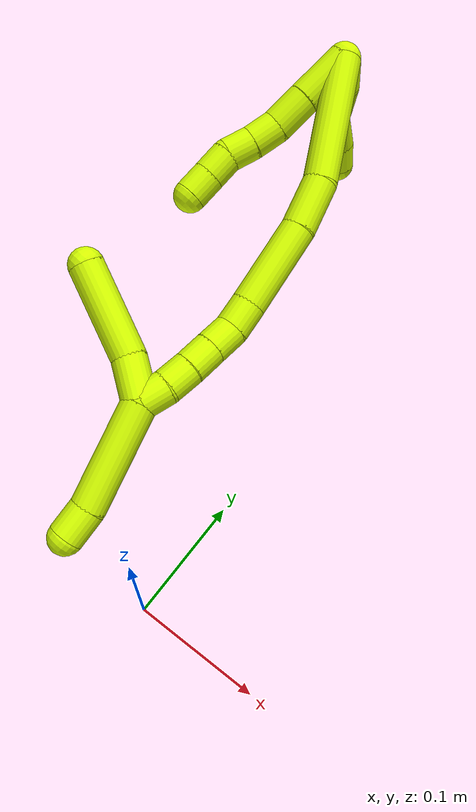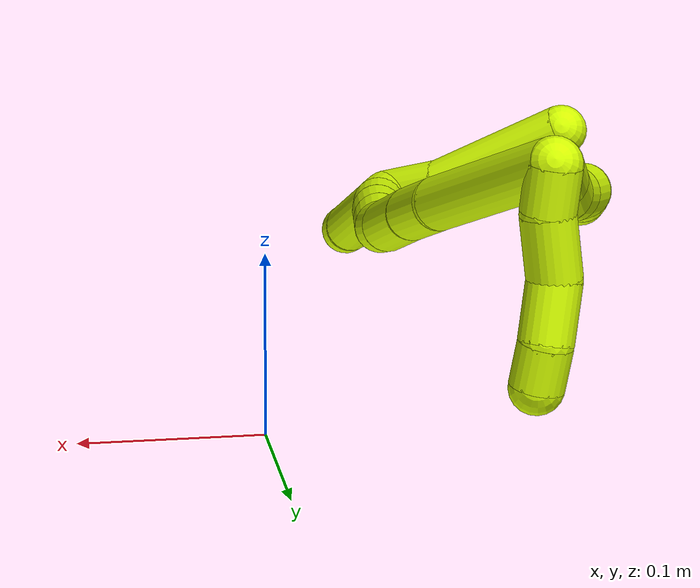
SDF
<sdf version="1.7">
 <world name="default">
  <model name="15">
   <static>0</static>
   <link name="15">
    <collision name="collision-cylinder-e_1_2_8">
     <pose>-0.001703 0.001025 -0.019855 -3.09 -0.085453 2.05566</pose>
     <geometry><cylinder><radius>0.0125</radius><length>0.039909</length></cylinder></geometry>
     <surface>
      <friction><ode><mu>1.16</mu><mu2>1.16</mu2><slip1>0</slip1><slip2>0</slip2></ode></friction>
      <contact><ode><kp>1e+06</kp><kd>1</kd><max_vel>0</max_vel><min_depth>0.001</min_depth></ode></contact>
     </surface>
    </collision>
    <visual name="visual-cylinder-e_1_2_8">
     <pose>-0.001703 0.001025 -0.019855 -3.09 -0.085453 2.05566</pose>
     <geometry><cylinder><radius>0.0125</radius><length>0.039909</length></cylinder></geometry>
     <material><ambient>0.835294 1 0 1</ambient></material>
    </visual>
    <collision name="collision-cylinder-e_2_8_9">
     <pose>-0.004485 0.00334 -0.053664 -3.04944 -0.07686 1.3901</pose>
     <geometry><cylinder><radius>0.0125</radius><length>0.028109</length></cylinder></geometry>
     <surface>
      <friction><ode><mu>1.16</mu><mu2>1.16</mu2><slip1>0</slip1><slip2>0</slip2></ode></friction>
      <contact><ode><kp>1e+06</kp><kd>1</kd><max_vel>0</max_vel><min_depth>0.001</min_depth></ode></contact>
     </surface>
    </collision>
    <visual name="visual-cylinder-e_2_8_9">
     <pose>-0.004485 0.00334 -0.053664 -3.04944 -0.07686 1.3901</pose>
     <geometry><cylinder><radius>0.0125</radius><length>0.028109</length></cylinder></geometry>
     <material><ambient>0.835294 1 0 1</ambient></material>
    </visual>
    <collision name="collision-cylinder-e_3_9_10">
     <pose>-0.008453 0.004518 -0.078092 3.13096 -0.269042 -3.06307</pose>
     <geometry><cylinder><radius>0.0125</radius><length>0.021732</length></cylinder></geometry>
     <surface>
      <friction><ode><mu>1.16</mu><mu2>1.16</mu2><slip1>0</slip1><slip2>0</slip2></ode></friction>
      <contact><ode><kp>1e+06</kp><kd>1</kd><max_vel>0</max_vel><min_depth>0.001</min_depth></ode></contact>
     </surface>
    </collision>
    <visual name="visual-cylinder-e_3_9_10">
     <pose>-0.008453 0.004518 -0.078092 3.13096 -0.269042 -3.06307</pose>
     <geometry><cylinder><radius>0.0125</radius><length>0.021732</length></cylinder></geometry>
     <material><ambient>0.835294 1 0 1</ambient></material>
    </visual>
    <collision name="collision-cylinder-e_4_10_11">
     <pose>-0.01509 0.004258 -0.097939 3.12574 -0.380418 -3.05931</pose>
     <geometry><cylinder><radius>0.0125</radius><length>0.020192</length></cylinder></geometry>
     <surface>
      <friction><ode><mu>1.16</mu><mu2>1.16</mu2><slip1>0</slip1><slip2>0</slip2></ode></friction>
      <contact><ode><kp>1e+06</kp><kd>1</kd><max_vel>0</max_vel><min_depth>0.001</min_depth></ode></contact>
     </surface>
    </collision>
    <visual name="visual-cylinder-e_4_10_11">
     <pose>-0.01509 0.004258 -0.097939 3.12574 -0.380418 -3.05931</pose>
     <geometry><cylinder><radius>0.0125</radius><length>0.020192</length></cylinder></geometry>
     <material><ambient>0.835294 1 0 1</ambient></material>
    </visual>
    <collision name="collision-cylinder-e_5_11_12">
     <pose>-0.019317 0.003508 -0.117299 3.08145 -0.047799 -1.343</pose>
     <geometry><cylinder><radius>0.0125</radius><length>0.020034</length></cylinder></geometry>
     <surface>
      <friction><ode><mu>1.16</mu><mu2>1.16</mu2><slip1>0</slip1><slip2>0</slip2></ode></friction>
      <contact><ode><kp>1e+06</kp><kd>1</kd><max_vel>0</max_vel><min_depth>0.001</min_depth></ode></contact>
     </surface>
    </collision>
    <visual name="visual-cylinder-e_5_11_12">
     <pose>-0.019317 0.003508 -0.117299 3.08145 -0.047799 -1.343</pose>
     <geometry><cylinder><radius>0.0125</radius><length>0.020034</length></cylinder></geometry>
     <material><ambient>0.835294 1 0 1</ambient></material>
    </visual>
    <collision name="collision-cylinder-e_6_12_6">
     <pose>-0.020345 0.002094 -0.137251 3.0602 -0.054912 -1.1867</pose>
     <geometry><cylinder><radius>0.0125</radius><length>0.020025</length></cylinder></geometry>
     <surface>
      <friction><ode><mu>1.16</mu><mu2>1.16</mu2><slip1>0</slip1><slip2>0</slip2></ode></friction>
      <contact><ode><kp>1e+06</kp><kd>1</kd><max_vel>0</max_vel><min_depth>0.001</min_depth></ode></contact>
     </surface>
    </collision>
    <visual name="visual-cylinder-e_6_12_6">
     <pose>-0.020345 0.002094 -0.137251 3.0602 -0.054912 -1.1867</pose>
     <geometry><cylinder><radius>0.0125</radius><length>0.020025</length></cylinder></geometry>
     <material><ambient>0.835294 1 0 1</ambient></material>
    </visual>
    <collision name="collision-cylinder-e_1_2_13">
     <pose>0.007042 0.006797 -0.004845 -2.19003 0.7008 -1.23391</pose>
     <geometry><cylinder><radius>0.0125</radius><length>0.021842</length></cylinder></geometry>
     <surface>
      <friction><ode><mu>1.16</mu><mu2>1.16</mu2><slip1>0</slip1><slip2>0</slip2></ode></friction>
      <contact><ode><kp>1e+06</kp><kd>1</kd><max_vel>0</max_vel><min_depth>0.001</min_depth></ode></contact>
     </surface>
    </collision>
    <visual name="visual-cylinder-e_1_2_13">
     <pose>0.007042 0.006797 -0.004845 -2.19003 0.7008 -1.23391</pose>
     <geometry><cylinder><radius>0.0125</radius><length>0.021842</length></cylinder></geometry>
     <material><ambient>0.835294 1 0 1</ambient></material>
    </visual>
    <collision name="collision-cylinder-e_2_13_14">
     <pose>0.020885 0.024962 -0.016708 -2.1239 0.470887 -0.812259</pose>
     <geometry><cylinder><radius>0.0125</radius><length>0.029982</length></cylinder></geometry>
     <surface>
      <friction><ode><mu>1.16</mu><mu2>1.16</mu2><slip1>0</slip1><slip2>0</slip2></ode></friction>
      <contact><ode><kp>1e+06</kp><kd>1</kd><max_vel>0</max_vel><min_depth>0.001</min_depth></ode></contact>
     </surface>
    </collision>
    <visual name="visual-cylinder-e_2_13_14">
     <pose>0.020885 0.024962 -0.016708 -2.1239 0.470887 -0.812259</pose>
     <geometry><cylinder><radius>0.0125</radius><length>0.029982</length></cylinder></geometry>
     <material><ambient>0.835294 1 0 1</ambient></material>
    </visual>
    <collision name="collision-cylinder-e_3_14_15">
     <pose>0.037411 0.045725 -0.027136 -1.91893 0.77164 -1.05043</pose>
     <geometry><cylinder><radius>0.0125</radius><length>0.027891</length></cylinder></geometry>
     <surface>
      <friction><ode><mu>1.16</mu><mu2>1.16</mu2><slip1>0</slip1><slip2>0</slip2></ode></friction>
      <contact><ode><kp>1e+06</kp><kd>1</kd><max_vel>0</max_vel><min_depth>0.001</min_depth></ode></contact>
     </surface>
    </collision>
    <visual name="visual-cylinder-e_3_14_15">
     <pose>0.037411 0.045725 -0.027136 -1.91893 0.77164 -1.05043</pose>
     <geometry><cylinder><radius>0.0125</radius><length>0.027891</length></cylinder></geometry>
     <material><ambient>0.835294 1 0 1</ambient></material>
    </visual>
    <collision name="collision-cylinder-e_4_15_5">
     <pose>0.054079 0.060921 -0.035131 -2.23986 0.754056 -1.37113</pose>
     <geometry><cylinder><radius>0.0125</radius><length>0.020285</length></cylinder></geometry>
     <surface>
      <friction><ode><mu>1.16</mu><mu2>1.16</mu2><slip1>0</slip1><slip2>0</slip2></ode></friction>
      <contact><ode><kp>1e+06</kp><kd>1</kd><max_vel>0</max_vel><min_depth>0.001</min_depth></ode></contact>
     </surface>
    </collision>
    <visual name="visual-cylinder-e_4_15_5">
     <pose>0.054079 0.060921 -0.035131 -2.23986 0.754056 -1.37113</pose>
     <geometry><cylinder><radius>0.0125</radius><length>0.020285</length></cylinder></geometry>
     <material><ambient>0.835294 1 0 1</ambient></material>
    </visual>
    <collision name="collision-cylinder-e_1_2_16">
     <pose>0.019836 -0.014256 -0.040991 2.80689 0.428716 1.82177</pose>
     <geometry><cylinder><radius>0.0125</radius><length>0.095436</length></cylinder></geometry>
     <surface>
      <friction><ode><mu>1.16</mu><mu2>1.16</mu2><slip1>0</slip1><slip2>0</slip2></ode></friction>
      <contact><ode><kp>1e+06</kp><kd>1</kd><max_vel>0</max_vel><min_depth>0.001</min_depth></ode></contact>
     </surface>
    </collision>
    <visual name="visual-cylinder-e_1_2_16">
     <pose>0.019836 -0.014256 -0.040991 2.80689 0.428716 1.82177</pose>
     <geometry><cylinder><radius>0.0125</radius><length>0.095436</length></cylinder></geometry>
     <material><ambient>0.835294 1 0 1</ambient></material>
    </visual>
    <collision name="collision-cylinder-e_2_16_17">
     <pose>0.043668 -0.032849 -0.10009 2.90651 0.211327 1.46357</pose>
     <geometry><cylinder><radius>0.0125</radius><length>0.038088</length></cylinder></geometry>
     <surface>
      <friction><ode><mu>1.16</mu><mu2>1.16</mu2><slip1>0</slip1><slip2>0</slip2></ode></friction>
      <contact><ode><kp>1e+06</kp><kd>1</kd><max_vel>0</max_vel><min_depth>0.001</min_depth></ode></contact>
     </surface>
    </collision>
    <visual name="visual-cylinder-e_2_16_17">
     <pose>0.043668 -0.032849 -0.10009 2.90651 0.211327 1.46357</pose>
     <geometry><cylinder><radius>0.0125</radius><length>0.038088</length></cylinder></geometry>
     <material><ambient>0.835294 1 0 1</ambient></material>
    </visual>
    <collision name="collision-cylinder-e_3_17_18">
     <pose>0.050397 -0.042787 -0.14963 2.96526 0.085437 0.900817</pose>
     <geometry><cylinder><radius>0.0125</radius><length>0.064088</length></cylinder></geometry>
     <surface>
      <friction><ode><mu>1.16</mu><mu2>1.16</mu2><slip1>0</slip1><slip2>0</slip2></ode></friction>
      <contact><ode><kp>1e+06</kp><kd>1</kd><max_vel>0</max_vel><min_depth>0.001</min_depth></ode></contact>
     </surface>
    </collision>
    <visual name="visual-cylinder-e_3_17_18">
     <pose>0.050397 -0.042787 -0.14963 2.96526 0.085437 0.900817</pose>
     <geometry><cylinder><radius>0.0125</radius><length>0.064088</length></cylinder></geometry>
     <material><ambient>0.835294 1 0 1</ambient></material>
    </visual>
    <collision name="collision-cylinder-e_4_18_19">
     <pose>0.053672 -0.050654 -0.191477 2.92736 0.050726 0.463371</pose>
     <geometry><cylinder><radius>0.0125</radius><length>0.021345</length></cylinder></geometry>
     <surface>
      <friction><ode><mu>1.16</mu><mu2>1.16</mu2><slip1>0</slip1><slip2>0</slip2></ode></friction>
      <contact><ode><kp>1e+06</kp><kd>1</kd><max_vel>0</max_vel><min_depth>0.001</min_depth></ode></contact>
     </surface>
    </collision>
    <visual name="visual-cylinder-e_4_18_19">
     <pose>0.053672 -0.050654 -0.191477 2.92736 0.050726 0.463371</pose>
     <geometry><cylinder><radius>0.0125</radius><length>0.021345</length></cylinder></geometry>
     <material><ambient>0.835294 1 0 1</ambient></material>
    </visual>
    <collision name="collision-cylinder-e_5_19_20">
     <pose>0.052193 -0.056136 -0.21143 2.81636 -0.198096 -1.08918</pose>
     <geometry><cylinder><radius>0.0125</radius><length>0.020532</length></cylinder></geometry>
     <surface>
      <friction><ode><mu>1.16</mu><mu2>1.16</mu2><slip1>0</slip1><slip2>0</slip2></ode></friction>
      <contact><ode><kp>1e+06</kp><kd>1</kd><max_vel>0</max_vel><min_depth>0.001</min_depth></ode></contact>
     </surface>
    </collision>
    <visual name="visual-cylinder-e_5_19_20">
     <pose>0.052193 -0.056136 -0.21143 2.81636 -0.198096 -1.08918</pose>
     <geometry><cylinder><radius>0.0125</radius><length>0.020532</length></cylinder></geometry>
     <material><ambient>0.835294 1 0 1</ambient></material>
    </visual>
    <collision name="collision-cylinder-e_6_20_21">
     <pose>0.048225 -0.062578 -0.230463 2.81405 -0.191832 -1.05446</pose>
     <geometry><cylinder><radius>0.0125</radius><length>0.020433</length></cylinder></geometry>
     <surface>
      <friction><ode><mu>1.16</mu><mu2>1.16</mu2><slip1>0</slip1><slip2>0</slip2></ode></friction>
      <contact><ode><kp>1e+06</kp><kd>1</kd><max_vel>0</max_vel><min_depth>0.001</min_depth></ode></contact>
     </surface>
    </collision>
    <visual name="visual-cylinder-e_6_20_21">
     <pose>0.048225 -0.062578 -0.230463 2.81405 -0.191832 -1.05446</pose>
     <geometry><cylinder><radius>0.0125</radius><length>0.020433</length></cylinder></geometry>
     <material><ambient>0.835294 1 0 1</ambient></material>
    </visual>
    <collision name="collision-cylinder-e_7_21_22">
     <pose>0.043964 -0.068416 -0.249358 2.8706 -0.232838 -1.41802</pose>
     <geometry><cylinder><radius>0.0125</radius><length>0.02005</length></cylinder></geometry>
     <surface>
      <friction><ode><mu>1.16</mu><mu2>1.16</mu2><slip1>0</slip1><slip2>0</slip2></ode></friction>
      <contact><ode><kp>1e+06</kp><kd>1</kd><max_vel>0</max_vel><min_depth>0.001</min_depth></ode></contact>
     </surface>
    </collision>
    <visual name="visual-cylinder-e_7_21_22">
     <pose>0.043964 -0.068416 -0.249358 2.8706 -0.232838 -1.41802</pose>
     <geometry><cylinder><radius>0.0125</radius><length>0.02005</length></cylinder></geometry>
     <material><ambient>0.835294 1 0 1</ambient></material>
    </visual>
    <collision name="collision-cylinder-e_8_22_1">
     <pose>0.037998 -0.072562 -0.267954 2.97625 -0.373373 -2.3148</pose>
     <geometry><cylinder><radius>0.0125</radius><length>0.020029</length></cylinder></geometry>
     <surface>
      <friction><ode><mu>1.16</mu><mu2>1.16</mu2><slip1>0</slip1><slip2>0</slip2></ode></friction>
      <contact><ode><kp>1e+06</kp><kd>1</kd><max_vel>0</max_vel><min_depth>0.001</min_depth></ode></contact>
     </surface>
    </collision>
    <visual name="visual-cylinder-e_8_22_1">
     <pose>0.037998 -0.072562 -0.267954 2.97625 -0.373373 -2.3148</pose>
     <geometry><cylinder><radius>0.0125</radius><length>0.020029</length></cylinder></geometry>
     <material><ambient>0.835294 1 0 1</ambient></material>
    </visual>
    <collision name="collision-cylinder-e_1_1_23">
     <pose>0.023141 -0.06677 -0.268734 -0.716227 -0.787366 0.308434</pose>
     <geometry><cylinder><radius>0.0125</radius><length>0.031625</length></cylinder></geometry>
     <surface>
      <friction><ode><mu>1.16</mu><mu2>1.16</mu2><slip1>0</slip1><slip2>0</slip2></ode></friction>
      <contact><ode><kp>1e+06</kp><kd>1</kd><max_vel>0</max_vel><min_depth>0.001</min_depth></ode></contact>
     </surface>
    </collision>
    <visual name="visual-cylinder-e_1_1_23">
     <pose>0.023141 -0.06677 -0.268734 -0.716227 -0.787366 0.308434</pose>
     <geometry><cylinder><radius>0.0125</radius><length>0.031625</length></cylinder></geometry>
     <material><ambient>0.835294 1 0 1</ambient></material>
    </visual>
    <collision name="collision-cylinder-e_2_23_4">
     <pose>-0.01772 -0.049909 -0.246236 -0.595233 -1.05019 0.351732</pose>
     <geometry><cylinder><radius>0.0125</radius><length>0.068375</length></cylinder></geometry>
     <surface>
      <friction><ode><mu>1.16</mu><mu2>1.16</mu2><slip1>0</slip1><slip2>0</slip2></ode></friction>
      <contact><ode><kp>1e+06</kp><kd>1</kd><max_vel>0</max_vel><min_depth>0.001</min_depth></ode></contact>
     </surface>
    </collision>
    <visual name="visual-cylinder-e_2_23_4">
     <pose>-0.01772 -0.049909 -0.246236 -0.595233 -1.05019 0.351732</pose>
     <geometry><cylinder><radius>0.0125</radius><length>0.068375</length></cylinder></geometry>
     <material><ambient>0.835294 1 0 1</ambient></material>
    </visual>
    <collision name="collision-cylinder-e_1_1_24">
     <pose>0.042945 -0.078899 -0.314316 3.0131 0.22559 2.10854</pose>
     <geometry><cylinder><radius>0.0125</radius><length>0.076896</length></cylinder></geometry>
     <surface>
      <friction><ode><mu>1.16</mu><mu2>1.16</mu2><slip1>0</slip1><slip2>0</slip2></ode></friction>
      <contact><ode><kp>1e+06</kp><kd>1</kd><max_vel>0</max_vel><min_depth>0.001</min_depth></ode></contact>
     </surface>
    </collision>
    <visual name="visual-cylinder-e_1_1_24">
     <pose>0.042945 -0.078899 -0.314316 3.0131 0.22559 2.10854</pose>
     <geometry><cylinder><radius>0.0125</radius><length>0.076896</length></cylinder></geometry>
     <material><ambient>0.835294 1 0 1</ambient></material>
    </visual>
    <collision name="collision-cylinder-e_2_24_3">
     <pose>0.051751 -0.085498 -0.36289 2.98536 0.017809 0.22654</pose>
     <geometry><cylinder><radius>0.0125</radius><length>0.023104</length></cylinder></geometry>
     <surface>
      <friction><ode><mu>1.16</mu><mu2>1.16</mu2><slip1>0</slip1><slip2>0</slip2></ode></friction>
      <contact><ode><kp>1e+06</kp><kd>1</kd><max_vel>0</max_vel><min_depth>0.001</min_depth></ode></contact>
     </surface>
    </collision>
    <visual name="visual-cylinder-e_2_24_3">
     <pose>0.051751 -0.085498 -0.36289 2.98536 0.017809 0.22654</pose>
     <geometry><cylinder><radius>0.0125</radius><length>0.023104</length></cylinder></geometry>
     <material><ambient>0.835294 1 0 1</ambient></material>
    </visual>
    <collision name="collision-sphere-3">
     <pose>0.051956 -0.087295 -0.3743 0 -0 0</pose>
     <geometry><sphere><radius>0.0125</radius></sphere></geometry>
     <surface>
      <friction><ode><mu>1.16</mu><mu2>1.16</mu2><slip1>0</slip1><slip2>0</slip2></ode></friction>
      <contact><ode><kp>1e+06</kp><kd>1</kd><max_vel>0</max_vel><min_depth>0.001</min_depth></ode></contact>
     </surface>
    </collision>
    <visual name="visual-sphere-3">
     <pose>0.051956 -0.087295 -0.3743 0 -0 0</pose>
     <geometry><sphere><radius>0.0125</radius></sphere></geometry>
     <material><ambient>0.835294 1 0 1</ambient></material>
    </visual>
    <collision name="collision-sphere-24">
     <pose>0.051545 -0.083701 -0.35148 0 -0 0</pose>
     <geometry><sphere><radius>0.0125</radius></sphere></geometry>
     <surface>
      <friction><ode><mu>1.16</mu><mu2>1.16</mu2><slip1>0</slip1><slip2>0</slip2></ode></friction>
      <contact><ode><kp>1e+06</kp><kd>1</kd><max_vel>0</max_vel><min_depth>0.001</min_depth></ode></contact>
     </surface>
    </collision>
    <visual name="visual-sphere-24">
     <pose>0.051545 -0.083701 -0.35148 0 -0 0</pose>
     <geometry><sphere><radius>0.0125</radius></sphere></geometry>
     <material><ambient>0.835294 1 0 1</ambient></material>
    </visual>
    <collision name="collision-sphere-4">
     <pose>-0.047378 -0.040375 -0.232156 0 -0 0</pose>
     <geometry><sphere><radius>0.0125</radius></sphere></geometry>
     <surface>
      <friction><ode><mu>1.16</mu><mu2>1.16</mu2><slip1>0</slip1><slip2>0</slip2></ode></friction>
      <contact><ode><kp>1e+06</kp><kd>1</kd><max_vel>0</max_vel><min_depth>0.001</min_depth></ode></contact>
     </surface>
    </collision>
    <visual name="visual-sphere-4">
     <pose>-0.047378 -0.040375 -0.232156 0 -0 0</pose>
     <geometry><sphere><radius>0.0125</radius></sphere></geometry>
     <material><ambient>0.835294 1 0 1</ambient></material>
    </visual>
    <collision name="collision-sphere-23">
     <pose>0.011938 -0.059444 -0.260316 0 -0 0</pose>
     <geometry><sphere><radius>0.0125</radius></sphere></geometry>
     <surface>
      <friction><ode><mu>1.16</mu><mu2>1.16</mu2><slip1>0</slip1><slip2>0</slip2></ode></friction>
      <contact><ode><kp>1e+06</kp><kd>1</kd><max_vel>0</max_vel><min_depth>0.001</min_depth></ode></contact>
     </surface>
    </collision>
    <visual name="visual-sphere-23">
     <pose>0.011938 -0.059444 -0.260316 0 -0 0</pose>
     <geometry><sphere><radius>0.0125</radius></sphere></geometry>
     <material><ambient>0.835294 1 0 1</ambient></material>
    </visual>
    <collision name="collision-sphere-1">
     <pose>0.034345 -0.074097 -0.277151 0 -0 0</pose>
     <geometry><sphere><radius>0.0125</radius></sphere></geometry>
     <surface>
      <friction><ode><mu>1.16</mu><mu2>1.16</mu2><slip1>0</slip1><slip2>0</slip2></ode></friction>
      <contact><ode><kp>1e+06</kp><kd>1</kd><max_vel>0</max_vel><min_depth>0.001</min_depth></ode></contact>
     </surface>
    </collision>
    <visual name="visual-sphere-1">
     <pose>0.034345 -0.074097 -0.277151 0 -0 0</pose>
     <geometry><sphere><radius>0.0125</radius></sphere></geometry>
     <material><ambient>0.835294 1 0 1</ambient></material>
    </visual>
    <collision name="collision-sphere-22">
     <pose>0.04165 -0.071028 -0.258757 0 -0 0</pose>
     <geometry><sphere><radius>0.0125</radius></sphere></geometry>
     <surface>
      <friction><ode><mu>1.16</mu><mu2>1.16</mu2><slip1>0</slip1><slip2>0</slip2></ode></friction>
      <contact><ode><kp>1e+06</kp><kd>1</kd><max_vel>0</max_vel><min_depth>0.001</min_depth></ode></contact>
     </surface>
    </collision>
    <visual name="visual-sphere-22">
     <pose>0.04165 -0.071028 -0.258757 0 -0 0</pose>
     <geometry><sphere><radius>0.0125</radius></sphere></geometry>
     <material><ambient>0.835294 1 0 1</ambient></material>
    </visual>
    <collision name="collision-sphere-21">
     <pose>0.046277 -0.065805 -0.239959 0 -0 0</pose>
     <geometry><sphere><radius>0.0125</radius></sphere></geometry>
     <surface>
      <friction><ode><mu>1.16</mu><mu2>1.16</mu2><slip1>0</slip1><slip2>0</slip2></ode></friction>
      <contact><ode><kp>1e+06</kp><kd>1</kd><max_vel>0</max_vel><min_depth>0.001</min_depth></ode></contact>
     </surface>
    </collision>
    <visual name="visual-sphere-21">
     <pose>0.046277 -0.065805 -0.239959 0 -0 0</pose>
     <geometry><sphere><radius>0.0125</radius></sphere></geometry>
     <material><ambient>0.835294 1 0 1</ambient></material>
    </visual>
    <collision name="collision-sphere-12">
     <pose>-0.019796 0.002907 -0.127287 0 -0 0</pose>
     <geometry><sphere><radius>0.0125</radius></sphere></geometry>
     <surface>
      <friction><ode><mu>1.16</mu><mu2>1.16</mu2><slip1>0</slip1><slip2>0</slip2></ode></friction>
      <contact><ode><kp>1e+06</kp><kd>1</kd><max_vel>0</max_vel><min_depth>0.001</min_depth></ode></contact>
     </surface>
    </collision>
    <visual name="visual-sphere-12">
     <pose>-0.019796 0.002907 -0.127287 0 -0 0</pose>
     <geometry><sphere><radius>0.0125</radius></sphere></geometry>
     <material><ambient>0.835294 1 0 1</ambient></material>
    </visual>
    <collision name="collision-sphere-11">
     <pose>-0.018838 0.00411 -0.107312 0 -0 0</pose>
     <geometry><sphere><radius>0.0125</radius></sphere></geometry>
     <surface>
      <friction><ode><mu>1.16</mu><mu2>1.16</mu2><slip1>0</slip1><slip2>0</slip2></ode></friction>
      <contact><ode><kp>1e+06</kp><kd>1</kd><max_vel>0</max_vel><min_depth>0.001</min_depth></ode></contact>
     </surface>
    </collision>
    <visual name="visual-sphere-11">
     <pose>-0.018838 0.00411 -0.107312 0 -0 0</pose>
     <geometry><sphere><radius>0.0125</radius></sphere></geometry>
     <material><ambient>0.835294 1 0 1</ambient></material>
    </visual>
    <collision name="collision-sphere-10">
     <pose>-0.011341 0.004407 -0.088566 0 -0 0</pose>
     <geometry><sphere><radius>0.0125</radius></sphere></geometry>
     <surface>
      <friction><ode><mu>1.16</mu><mu2>1.16</mu2><slip1>0</slip1><slip2>0</slip2></ode></friction>
      <contact><ode><kp>1e+06</kp><kd>1</kd><max_vel>0</max_vel><min_depth>0.001</min_depth></ode></contact>
     </surface>
    </collision>
    <visual name="visual-sphere-10">
     <pose>-0.011341 0.004407 -0.088566 0 -0 0</pose>
     <geometry><sphere><radius>0.0125</radius></sphere></geometry>
     <material><ambient>0.835294 1 0 1</ambient></material>
    </visual>
    <collision name="collision-sphere-9">
     <pose>-0.005565 0.004629 -0.067617 0 -0 0</pose>
     <geometry><sphere><radius>0.0125</radius></sphere></geometry>
     <surface>
      <friction><ode><mu>1.16</mu><mu2>1.16</mu2><slip1>0</slip1><slip2>0</slip2></ode></friction>
      <contact><ode><kp>1e+06</kp><kd>1</kd><max_vel>0</max_vel><min_depth>0.001</min_depth></ode></contact>
     </surface>
    </collision>
    <visual name="visual-sphere-9">
     <pose>-0.005565 0.004629 -0.067617 0 -0 0</pose>
     <geometry><sphere><radius>0.0125</radius></sphere></geometry>
     <material><ambient>0.835294 1 0 1</ambient></material>
    </visual>
    <collision name="collision-sphere-2">
     <geometry><sphere><radius>0.0125</radius></sphere></geometry>
     <surface>
      <friction><ode><mu>1.16</mu><mu2>1.16</mu2><slip1>0</slip1><slip2>0</slip2></ode></friction>
      <contact><ode><kp>1e+06</kp><kd>1</kd><max_vel>0</max_vel><min_depth>0.001</min_depth></ode></contact>
     </surface>
    </collision>
    <visual name="visual-sphere-2">
     <geometry><sphere><radius>0.0125</radius></sphere></geometry>
     <material><ambient>0.835294 1 0 1</ambient></material>
    </visual>
    <collision name="collision-sphere-19">
     <pose>0.054213 -0.05292 -0.201892 0 -0 0</pose>
     <geometry><sphere><radius>0.0125</radius></sphere></geometry>
     <surface>
      <friction><ode><mu>1.16</mu><mu2>1.16</mu2><slip1>0</slip1><slip2>0</slip2></ode></friction>
      <contact><ode><kp>1e+06</kp><kd>1</kd><max_vel>0</max_vel><min_depth>0.001</min_depth></ode></contact>
     </surface>
    </collision>
    <visual name="visual-sphere-19">
     <pose>0.054213 -0.05292 -0.201892 0 -0 0</pose>
     <geometry><sphere><radius>0.0125</radius></sphere></geometry>
     <material><ambient>0.835294 1 0 1</ambient></material>
    </visual>
    <collision name="collision-sphere-8">
     <pose>-0.003406 0.00205 -0.03971 0 -0 0</pose>
     <geometry><sphere><radius>0.0125</radius></sphere></geometry>
     <surface>
      <friction><ode><mu>1.16</mu><mu2>1.16</mu2><slip1>0</slip1><slip2>0</slip2></ode></friction>
      <contact><ode><kp>1e+06</kp><kd>1</kd><max_vel>0</max_vel><min_depth>0.001</min_depth></ode></contact>
     </surface>
    </collision>
    <visual name="visual-sphere-8">
     <pose>-0.003406 0.00205 -0.03971 0 -0 0</pose>
     <geometry><sphere><radius>0.0125</radius></sphere></geometry>
     <material><ambient>0.835294 1 0 1</ambient></material>
    </visual>
    <collision name="collision-sphere-6">
     <pose>-0.020895 0.001281 -0.147215 0 -0 0</pose>
     <geometry><sphere><radius>0.0125</radius></sphere></geometry>
     <surface>
      <friction><ode><mu>1.16</mu><mu2>1.16</mu2><slip1>0</slip1><slip2>0</slip2></ode></friction>
      <contact><ode><kp>1e+06</kp><kd>1</kd><max_vel>0</max_vel><min_depth>0.001</min_depth></ode></contact>
     </surface>
    </collision>
    <visual name="visual-sphere-6">
     <pose>-0.020895 0.001281 -0.147215 0 -0 0</pose>
     <geometry><sphere><radius>0.0125</radius></sphere></geometry>
     <material><ambient>0.835294 1 0 1</ambient></material>
    </visual>
    <collision name="collision-sphere-13">
     <pose>0.014084 0.013595 -0.00969 0 -0 0</pose>
     <geometry><sphere><radius>0.0125</radius></sphere></geometry>
     <surface>
      <friction><ode><mu>1.16</mu><mu2>1.16</mu2><slip1>0</slip1><slip2>0</slip2></ode></friction>
      <contact><ode><kp>1e+06</kp><kd>1</kd><max_vel>0</max_vel><min_depth>0.001</min_depth></ode></contact>
     </surface>
    </collision>
    <visual name="visual-sphere-13">
     <pose>0.014084 0.013595 -0.00969 0 -0 0</pose>
     <geometry><sphere><radius>0.0125</radius></sphere></geometry>
     <material><ambient>0.835294 1 0 1</ambient></material>
    </visual>
    <collision name="collision-sphere-14">
     <pose>0.027686 0.036329 -0.023726 0 -0 0</pose>
     <geometry><sphere><radius>0.0125</radius></sphere></geometry>
     <surface>
      <friction><ode><mu>1.16</mu><mu2>1.16</mu2><slip1>0</slip1><slip2>0</slip2></ode></friction>
      <contact><ode><kp>1e+06</kp><kd>1</kd><max_vel>0</max_vel><min_depth>0.001</min_depth></ode></contact>
     </surface>
    </collision>
    <visual name="visual-sphere-14">
     <pose>0.027686 0.036329 -0.023726 0 -0 0</pose>
     <geometry><sphere><radius>0.0125</radius></sphere></geometry>
     <material><ambient>0.835294 1 0 1</ambient></material>
    </visual>
    <collision name="collision-sphere-15">
     <pose>0.047135 0.055122 -0.030546 0 -0 0</pose>
     <geometry><sphere><radius>0.0125</radius></sphere></geometry>
     <surface>
      <friction><ode><mu>1.16</mu><mu2>1.16</mu2><slip1>0</slip1><slip2>0</slip2></ode></friction>
      <contact><ode><kp>1e+06</kp><kd>1</kd><max_vel>0</max_vel><min_depth>0.001</min_depth></ode></contact>
     </surface>
    </collision>
    <visual name="visual-sphere-15">
     <pose>0.047135 0.055122 -0.030546 0 -0 0</pose>
     <geometry><sphere><radius>0.0125</radius></sphere></geometry>
     <material><ambient>0.835294 1 0 1</ambient></material>
    </visual>
    <collision name="collision-sphere-5">
     <pose>0.061022 0.06672 -0.039717 0 -0 0</pose>
     <geometry><sphere><radius>0.0125</radius></sphere></geometry>
     <surface>
      <friction><ode><mu>1.16</mu><mu2>1.16</mu2><slip1>0</slip1><slip2>0</slip2></ode></friction>
      <contact><ode><kp>1e+06</kp><kd>1</kd><max_vel>0</max_vel><min_depth>0.001</min_depth></ode></contact>
     </surface>
    </collision>
    <visual name="visual-sphere-5">
     <pose>0.061022 0.06672 -0.039717 0 -0 0</pose>
     <geometry><sphere><radius>0.0125</radius></sphere></geometry>
     <material><ambient>0.835294 1 0 1</ambient></material>
    </visual>
    <collision name="collision-sphere-16">
     <pose>0.039673 -0.028512 -0.081982 0 -0 0</pose>
     <geometry><sphere><radius>0.0125</radius></sphere></geometry>
     <surface>
      <friction><ode><mu>1.16</mu><mu2>1.16</mu2><slip1>0</slip1><slip2>0</slip2></ode></friction>
      <contact><ode><kp>1e+06</kp><kd>1</kd><max_vel>0</max_vel><min_depth>0.001</min_depth></ode></contact>
     </surface>
    </collision>
    <visual name="visual-sphere-16">
     <pose>0.039673 -0.028512 -0.081982 0 -0 0</pose>
     <geometry><sphere><radius>0.0125</radius></sphere></geometry>
     <material><ambient>0.835294 1 0 1</ambient></material>
    </visual>
    <collision name="collision-sphere-17">
     <pose>0.047662 -0.037186 -0.118198 0 -0 0</pose>
     <geometry><sphere><radius>0.0125</radius></sphere></geometry>
     <surface>
      <friction><ode><mu>1.16</mu><mu2>1.16</mu2><slip1>0</slip1><slip2>0</slip2></ode></friction>
      <contact><ode><kp>1e+06</kp><kd>1</kd><max_vel>0</max_vel><min_depth>0.001</min_depth></ode></contact>
     </surface>
    </collision>
    <visual name="visual-sphere-17">
     <pose>0.047662 -0.037186 -0.118198 0 -0 0</pose>
     <geometry><sphere><radius>0.0125</radius></sphere></geometry>
     <material><ambient>0.835294 1 0 1</ambient></material>
    </visual>
    <collision name="collision-sphere-18">
     <pose>0.053131 -0.048387 -0.181062 0 -0 0</pose>
     <geometry><sphere><radius>0.0125</radius></sphere></geometry>
     <surface>
      <friction><ode><mu>1.16</mu><mu2>1.16</mu2><slip1>0</slip1><slip2>0</slip2></ode></friction>
      <contact><ode><kp>1e+06</kp><kd>1</kd><max_vel>0</max_vel><min_depth>0.001</min_depth></ode></contact>
     </surface>
    </collision>
    <visual name="visual-sphere-18">
     <pose>0.053131 -0.048387 -0.181062 0 -0 0</pose>
     <geometry><sphere><radius>0.0125</radius></sphere></geometry>
     <material><ambient>0.835294 1 0 1</ambient></material>
    </visual>
    <collision name="collision-sphere-20">
     <pose>0.050172 -0.059352 -0.220967 0 -0 0</pose>
     <geometry><sphere><radius>0.0125</radius></sphere></geometry>
     <surface>
      <friction><ode><mu>1.16</mu><mu2>1.16</mu2><slip1>0</slip1><slip2>0</slip2></ode></friction>
      <contact><ode><kp>1e+06</kp><kd>1</kd><max_vel>0</max_vel><min_depth>0.001</min_depth></ode></contact>
     </surface>
    </collision>
    <visual name="visual-sphere-20">
     <pose>0.050172 -0.059352 -0.220967 0 -0 0</pose>
     <geometry><sphere><radius>0.0125</radius></sphere></geometry>
     <material><ambient>0.835294 1 0 1</ambient></material>
    </visual>
    <inertial>
     <pose>0.022791 -0.028558 -0.149142 0 -0 0</pose>
     <mass>0.75</mass>
     <inertia><ixx>0.000126</ixx><ixy>0</ixy><ixz>0</ixz><iyy>0.000198</iyy><iyz>0</iyz><izz>-4e-05</izz></inertia>
    </inertial>
   </link>
   <pose>-0.079446 0.351891 0.241501 -1.00896 0.593885 0.172334</pose>
  </model>
 </world>
</sdf>
